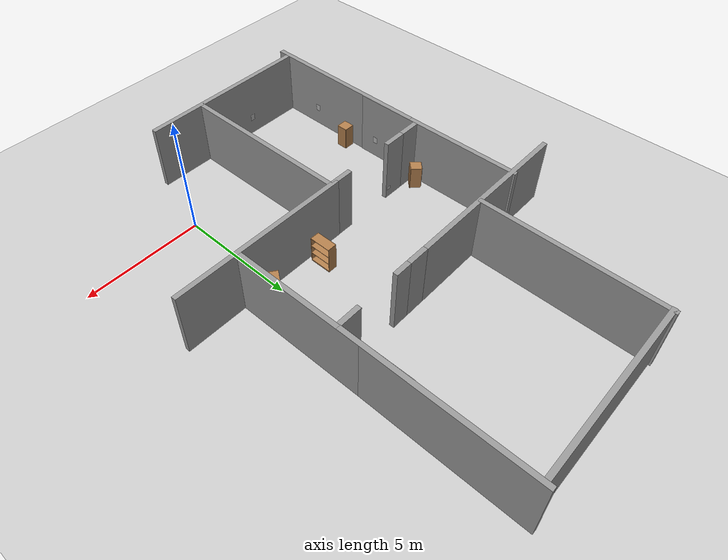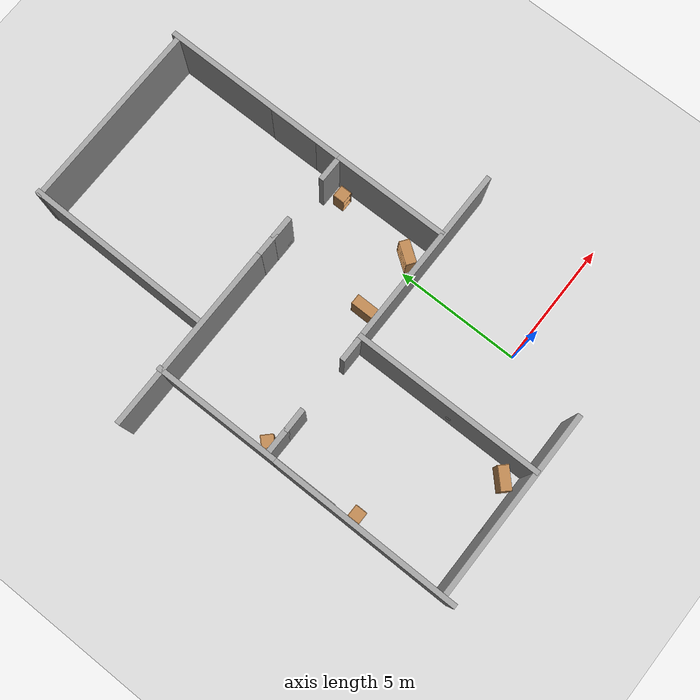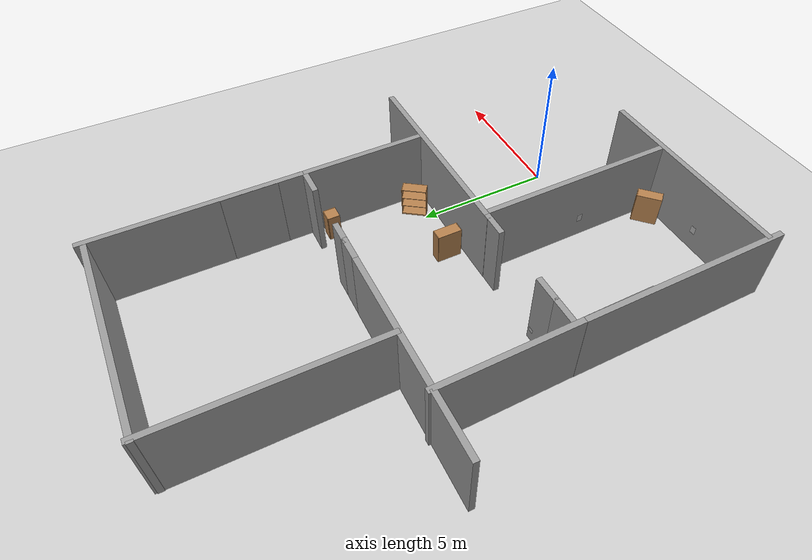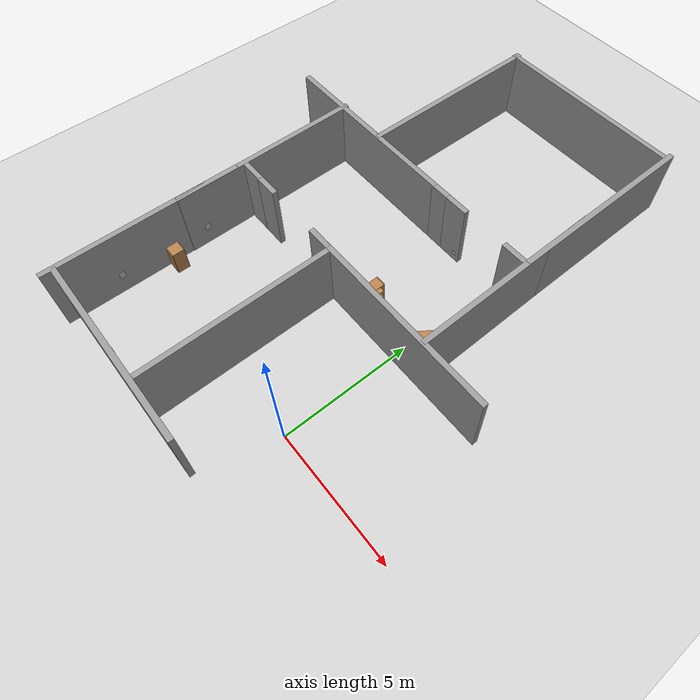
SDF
<sdf version="1.4">
 <world name="default">
  <model name="plum">
   <static>1</static>
   <link name="link">
    <pose>0 0 1.4 0 -0 0</pose>
    <collision name="collision"><geometry><box><size>7.5 0.2 2.8</size></box></geometry></collision>
    <visual name="visual">
     <cast_shadows>0</cast_shadows>
     <geometry><box><size>0.21 0.001 0.297</size></box></geometry>
     <material>
      <script>
       <uri>model://plum/materials/scripts</uri>
       <uri>model://plum/materials/textures</uri>
       <name>plum/Image</name>
      </script>
     </material>
    </visual>
    <velocity_decay><linear>0</linear><angular>0</angular></velocity_decay>
   </link>
   <pose>-8.12 2.43019 -0.548785 0 -0 1.56682</pose>
  </model>
  <model name="peacock">
   <static>1</static>
   <link name="link">
    <pose>0 0 1.4 0 -0 0</pose>
    <collision name="collision"><geometry><box><size>7.5 0.2 2.8</size></box></geometry></collision>
    <visual name="visual">
     <cast_shadows>0</cast_shadows>
     <geometry><box><size>0.21 0.001 0.297</size></box></geometry>
     <material>
      <script>
       <uri>model://peacock/materials/scripts</uri>
       <uri>model://peacock/materials/textures</uri>
       <name>peacock/Image</name>
      </script>
     </material>
    </visual>
    <velocity_decay><linear>0</linear><angular>0</angular></velocity_decay>
   </link>
   <pose>-3.31365 0.525367 -0.548785 0.001699 0.024262 -1.53124</pose>
  </model>
  <model name="scarlet">
   <static>1</static>
   <link name="link">
    <pose>0 0 1.4 0 -0 0</pose>
    <collision name="collision"><geometry><box><size>7.5 0.2 2.8</size></box></geometry></collision>
    <visual name="visual">
     <cast_shadows>0</cast_shadows>
     <geometry><box><size>0.21 0.001 0.297</size></box></geometry>
     <material>
      <script>
       <uri>model://scarlet/materials/scripts</uri>
       <uri>model://scarlet/materials/textures</uri>
       <name>scarlet/Image</name>
      </script>
     </material>
    </visual>
    <velocity_decay><linear>0</linear><angular>0</angular></velocity_decay>
   </link>
   <pose>-8.16312 -1.04809 -0.548785 0 -0 1.56682</pose>
  </model>
  <model name="mustard">
   <static>1</static>
   <link name="link">
    <pose>0 0 1.4 0 -0 0</pose>
    <collision name="collision"><geometry><box><size>7.5 0.2 2.8</size></box></geometry></collision>
    <visual name="visual">
     <cast_shadows>0</cast_shadows>
     <geometry><box><size>0.21 0.001 0.297</size></box></geometry>
     <material>
      <script>
       <uri>model://mustard/materials/scripts</uri>
       <uri>model://mustard/materials/textures</uri>
       <name>mustard/Image</name>
      </script>
     </material>
    </visual>
    <velocity_decay><linear>0</linear><angular>0</angular></velocity_decay>
   </link>
   <pose>-5.65847 -2.71459 -0.548785 0 0 -3.11888</pose>
  </model>
  <light name="sun" type="directional">
   <pose>0 0 1 0 -0 0</pose>
   <diffuse>0.8 0.8 0.8 1</diffuse>
   <specular>1 1 1 1</specular>
   <attenuation>
    <range>1000</range>
    <constant>0.9</constant>
    <linear>0.01</linear>
    <quadratic>0.001</quadratic>
   </attenuation>
   <direction>-0 0 -1</direction>
  </light>
  <light name="light_a" type="point">
   <cast_shadows>0</cast_shadows>
   <pose>0 0 1 0 -0 0</pose>
   <diffuse>0.2 0.2 0.2 1</diffuse>
   <specular>1 1 1 1</specular>
   <attenuation>
    <range>1000</range>
    <constant>0.9</constant>
    <linear>0.01</linear>
    <quadratic>0.001</quadratic>
   </attenuation>
   <direction>0 0 -1</direction>
  </light>
  <light name="light_b" type="point">
   <cast_shadows>0</cast_shadows>
   <pose>-7 6 1 0 -0 0</pose>
   <diffuse>0.2 0.2 0.2 0.2</diffuse>
   <specular>0.2 0.2 0.2 0.2</specular>
   <attenuation>
    <range>1000</range>
    <constant>0.9</constant>
    <linear>0.01</linear>
    <quadratic>0.001</quadratic>
   </attenuation>
   <direction>0 0 -1</direction>
  </light>
  <light name="light_c" type="point">
   <cast_shadows>0</cast_shadows>
   <pose>-2.3 6 1 0 -0 0</pose>
   <diffuse>0.2 0.2 0.2 1</diffuse>
   <specular>1 1 1 1</specular>
   <attenuation>
    <range>1000</range>
    <constant>0.9</constant>
    <linear>0.01</linear>
    <quadratic>0.001</quadratic>
   </attenuation>
   <direction>0 0 -1</direction>
  </light>
  <light name="light_d" type="point">
   <cast_shadows>0</cast_shadows>
   <pose>-7 2 1 0 -0 0</pose>
   <diffuse>0.2 0.2 0.2 1</diffuse>
   <specular>1 1 1 1</specular>
   <attenuation>
    <range>1000</range>
    <constant>0.9</constant>
    <linear>0.01</linear>
    <quadratic>0.001</quadratic>
   </attenuation>
   <direction>0 0 -1</direction>
  </light>
  <model name="ground_plane">
   <static>1</static>
   <link name="link">
    <collision name="collision">
     <geometry><plane><normal>0 0 1</normal><size>100 100</size></plane></geometry>
     <surface><friction><ode><mu>100</mu><mu2>50</mu2></ode></friction></surface>
    </collision>
    <visual name="visual">
     <cast_shadows>0</cast_shadows>
     <geometry><plane><normal>0 0 1</normal><size>100 100</size></plane></geometry>
     <material>
      <script><uri>file://media/materials/scripts/gazebo.material</uri><name>Gazebo/Grey</name></script>
     </material>
    </visual>
    <velocity_decay><linear>0</linear><angular>0</angular></velocity_decay>
   </link>
  </model>
  <physics type="ode">
   <max_step_size>0.001</max_step_size>
   <real_time_factor>1</real_time_factor>
   <real_time_update_rate>1000</real_time_update_rate>
   <gravity>0 0 -9.8</gravity>
  </physics>
  <scene><ambient>0.4 0.4 0.4 1</ambient><background>0.7 0.7 0.7 1</background><shadows>1</shadows></scene>
  <spherical_coordinates>
   <surface_model>EARTH_WGS84</surface_model>
   <latitude_deg>0</latitude_deg>
   <longitude_deg>0</longitude_deg>
   <elevation>0</elevation>
   <heading_deg>0</heading_deg>
  </spherical_coordinates>
  <model name="grey_wall_0">
   <static>1</static>
   <link name="link">
    <pose>0 0 1.4 0 -0 0</pose>
    <collision name="collision"><geometry><box><size>7.5 0.2 2.8</size></box></geometry></collision>
    <visual name="visual">
     <cast_shadows>0</cast_shadows>
     <geometry><box><size>7.5 0.2 2.8</size></box></geometry>
     <material>
      <script>
       <uri>model://grey_wall/materials/scripts</uri>
       <uri>model://grey_wall/materials/textures</uri>
       <name>vrc/grey_wall</name>
      </script>
     </material>
    </visual>
    <velocity_decay><linear>0</linear><angular>0</angular></velocity_decay>
   </link>
   <pose>-4.52291 -2.86251 0 0 -0 0</pose>
  </model>
  <model name="grey_wall_1">
   <static>1</static>
   <link name="link">
    <pose>0 0 1.4 0 -0 0</pose>
    <collision name="collision"><geometry><box><size>7.5 0.2 2.8</size></box></geometry></collision>
    <visual name="visual">
     <cast_shadows>0</cast_shadows>
     <geometry><box><size>7.5 0.2 2.8</size></box></geometry>
     <material>
      <script>
       <uri>model://grey_wall/materials/scripts</uri>
       <uri>model://grey_wall/materials/textures</uri>
       <name>vrc/grey_wall</name>
      </script>
     </material>
    </visual>
    <velocity_decay><linear>0</linear><angular>0</angular></velocity_decay>
   </link>
   <pose>-8.26511 0.391548 0 0 0 -1.57181</pose>
  </model>
  <model name="grey_wall_2">
   <static>1</static>
   <link name="link">
    <pose>0 0 1.4 0 -0 0</pose>
    <collision name="collision"><geometry><box><size>7.5 0.2 2.8</size></box></geometry></collision>
    <visual name="visual">
     <cast_shadows>0</cast_shadows>
     <geometry><box><size>7.5 0.2 2.8</size></box></geometry>
     <material>
      <script>
       <uri>model://grey_wall/materials/scripts</uri>
       <uri>model://grey_wall/materials/textures</uri>
       <name>vrc/grey_wall</name>
      </script>
     </material>
    </visual>
    <velocity_decay><linear>0</linear><angular>0</angular></velocity_decay>
   </link>
   <pose>-3.20895 0.824081 0 0 -0 1.57557</pose>
  </model>
  <model name="grey_wall_3">
   <static>1</static>
   <link name="link">
    <pose>0 0 1.4 0 -0 0</pose>
    <collision name="collision"><geometry><box><size>7.5 0.2 2.8</size></box></geometry></collision>
    <visual name="visual">
     <cast_shadows>0</cast_shadows>
     <geometry><box><size>7.5 0.2 2.8</size></box></geometry>
     <material>
      <script>
       <uri>model://grey_wall/materials/scripts</uri>
       <uri>model://grey_wall/materials/textures</uri>
       <name>vrc/grey_wall</name>
      </script>
     </material>
    </visual>
    <velocity_decay><linear>0</linear><angular>0</angular></velocity_decay>
   </link>
   <pose>1.28557 12.7935 0.00212 0 0 -1.57102</pose>
  </model>
  <model name="grey_wall_4">
   <static>1</static>
   <link name="link">
    <pose>0 0 1.4 0 -0 0</pose>
    <collision name="collision"><geometry><box><size>7.5 0.2 2.8</size></box></geometry></collision>
    <visual name="visual">
     <cast_shadows>0</cast_shadows>
     <geometry><box><size>7.5 0.2 2.8</size></box></geometry>
     <material>
      <script>
       <uri>model://grey_wall/materials/scripts</uri>
       <uri>model://grey_wall/materials/textures</uri>
       <name>vrc/grey_wall</name>
      </script>
     </material>
    </visual>
    <velocity_decay><linear>0</linear><angular>0</angular></velocity_decay>
   </link>
   <pose>0.216538 4.48112 0 0 -0 0</pose>
  </model>
  <model name="grey_wall_5">
   <static>1</static>
   <link name="link">
    <pose>0 0 1.4 0 -0 0</pose>
    <collision name="collision"><geometry><box><size>7.5 0.2 2.8</size></box></geometry></collision>
    <visual name="visual">
     <cast_shadows>0</cast_shadows>
     <geometry><box><size>7.5 0.2 2.8</size></box></geometry>
     <material>
      <script>
       <uri>model://grey_wall/materials/scripts</uri>
       <uri>model://grey_wall/materials/textures</uri>
       <name>vrc/grey_wall</name>
      </script>
     </material>
    </visual>
    <velocity_decay><linear>0</linear><angular>0</angular></velocity_decay>
   </link>
   <pose>-2.53554 16.2683 0 0 -0 0</pose>
  </model>
  <model name="cabinet">
   <static>1</static>
   <link name="cabinet_bottom_plate">
    <inertial>
     <pose>0 0 -1 0 -0 0</pose>
     <inertia><ixx>2.05</ixx><ixy>0</ixy><ixz>0</ixz><iyy>2.05</iyy><iyz>0</iyz><izz>2.05</izz></inertia>
     <mass>25</mass>
    </inertial>
    <collision name="cabinet_bottom_plate_geom">
     <pose>0 0 0.01 0 -0 0</pose>
     <geometry><box><size>0.45 0.45 0.02</size></box></geometry>
    </collision>
    <visual name="cabinet_bottom_plate_geom_visual">
     <pose>0 0 0.01 0 -0 0</pose>
     <geometry><box><size>0.45 0.45 0.02</size></box></geometry>
     <material>
      <script><uri>file://media/materials/scripts/gazebo.material</uri><name>Gazebo/Wood</name></script>
     </material>
    </visual>
    <collision name="cabinet_bottom_plate_geom_cabinet_back_plate">
     <pose>0.235 0 0.51 0 -0 0</pose>
     <geometry><box><size>0.02 0.45 1.02</size></box></geometry>
    </collision>
    <visual name="cabinet_bottom_plate_geom_cabinet_back_plate_visual">
     <pose>0.235 0 0.51 0 -0 0</pose>
     <geometry><box><size>0.02 0.45 1.02</size></box></geometry>
     <material>
      <script><uri>file://media/materials/scripts/gazebo.material</uri><name>Gazebo/Wood</name></script>
     </material>
    </visual>
    <collision name="cabinet_bottom_plate_geom_cabinet_left_plate">
     <pose>0 0.235 0.51 0 -0 0</pose>
     <geometry><box><size>0.45 0.02 1.02</size></box></geometry>
    </collision>
    <visual name="cabinet_bottom_plate_geom_cabinet_left_plate_visual">
     <pose>0 0.235 0.51 0 -0 0</pose>
     <geometry><box><size>0.45 0.02 1.02</size></box></geometry>
     <material>
      <script><uri>file://media/materials/scripts/gazebo.material</uri><name>Gazebo/Wood</name></script>
     </material>
    </visual>
    <collision name="cabinet_bottom_plate_geom_cabinet_middle_plate">
     <pose>0 0 0.51 0 -0 0</pose>
     <geometry><box><size>0.45 0.45 0.02</size></box></geometry>
    </collision>
    <visual name="cabinet_bottom_plate_geom_cabinet_middle_plate_visual">
     <pose>0 0 0.51 0 -0 0</pose>
     <geometry><box><size>0.45 0.45 0.02</size></box></geometry>
     <material>
      <script><uri>file://media/materials/scripts/gazebo.material</uri><name>Gazebo/Wood</name></script>
     </material>
    </visual>
    <collision name="cabinet_bottom_plate_geom_cabinet_right_plate">
     <pose>0 -0.235 0.51 0 -0 0</pose>
     <geometry><box><size>0.45 0.02 1.02</size></box></geometry>
    </collision>
    <visual name="cabinet_bottom_plate_geom_cabinet_right_plate_visual">
     <pose>0 -0.235 0.51 0 -0 0</pose>
     <geometry><box><size>0.45 0.02 1.02</size></box></geometry>
     <material>
      <script><uri>file://media/materials/scripts/gazebo.material</uri><name>Gazebo/Wood</name></script>
     </material>
    </visual>
    <collision name="cabinet_bottom_plate_geom_cabinet_top_plate">
     <pose>0 0 1.01 0 -0 0</pose>
     <geometry><box><size>0.45 0.45 0.02</size></box></geometry>
    </collision>
    <visual name="cabinet_bottom_plate_geom_cabinet_top_plate_visual">
     <pose>0 0 1.01 0 -0 0</pose>
     <geometry><box><size>0.45 0.45 0.02</size></box></geometry>
     <material>
      <script><uri>file://media/materials/scripts/gazebo.material</uri><name>Gazebo/Wood</name></script>
     </material>
    </visual>
    <velocity_decay><linear>0</linear><angular>0</angular></velocity_decay>
   </link>
   <pose>0.764642 8.40607 0.028898 0 -0 1.56926</pose>
  </model>
  <model name="bookshelf">
   <static>1</static>
   <link name="link">
    <inertial><mass>1</mass></inertial>
    <collision name="back">
     <pose>0 0.005 0.6 0 -0 0</pose>
     <geometry><box><size>0.9 0.01 1.2</size></box></geometry>
    </collision>
    <visual name="visual1">
     <pose>0 0.005 0.6 0 -0 0</pose>
     <geometry><box><size>0.9 0.01 1.2</size></box></geometry>
     <material>
      <script><uri>file://media/materials/scripts/gazebo.material</uri><name>Gazebo/Wood</name></script>
     </material>
    </visual>
    <collision name="left_side">
     <pose>0.45 -0.195 0.6 0 -0 0</pose>
     <geometry><box><size>0.02 0.4 1.2</size></box></geometry>
    </collision>
    <visual name="visual2">
     <pose>0.45 -0.195 0.6 0 -0 0</pose>
     <geometry><box><size>0.02 0.4 1.2</size></box></geometry>
     <material>
      <script><uri>file://media/materials/scripts/gazebo.material</uri><name>Gazebo/Wood</name></script>
     </material>
    </visual>
    <collision name="right_side">
     <pose>-0.45 -0.195 0.6 0 -0 0</pose>
     <geometry><box><size>0.02 0.4 1.2</size></box></geometry>
    </collision>
    <visual name="visual3">
     <pose>-0.45 -0.195 0.6 0 -0 0</pose>
     <geometry><box><size>0.02 0.4 1.2</size></box></geometry>
     <material>
      <script><uri>file://media/materials/scripts/gazebo.material</uri><name>Gazebo/Wood</name></script>
     </material>
    </visual>
    <collision name="bottom">
     <pose>0 -0.195 0.03 0 -0 0</pose>
     <geometry><box><size>0.88 0.4 0.06</size></box></geometry>
    </collision>
    <visual name="visual4">
     <pose>0 -0.195 0.03 0 -0 0</pose>
     <geometry><box><size>0.88 0.4 0.06</size></box></geometry>
     <material>
      <script><uri>file://media/materials/scripts/gazebo.material</uri><name>Gazebo/Wood</name></script>
     </material>
    </visual>
    <collision name="top">
     <pose>0 -0.195 1.19 0 -0 0</pose>
     <geometry><box><size>0.88 0.4 0.02</size></box></geometry>
    </collision>
    <visual name="visual5">
     <pose>0 -0.195 1.19 0 -0 0</pose>
     <geometry><box><size>0.88 0.4 0.02</size></box></geometry>
     <material>
      <script><uri>file://media/materials/scripts/gazebo.material</uri><name>Gazebo/Wood</name></script>
     </material>
    </visual>
    <collision name="low_shelf">
     <pose>0 -0.195 0.43 0 -0 0</pose>
     <geometry><box><size>0.88 0.4 0.02</size></box></geometry>
    </collision>
    <visual name="visual6">
     <pose>0 -0.195 0.43 0 -0 0</pose>
     <geometry><box><size>0.88 0.4 0.02</size></box></geometry>
     <material>
      <script><uri>file://media/materials/scripts/gazebo.material</uri><name>Gazebo/Wood</name></script>
     </material>
    </visual>
    <collision name="high_shelf">
     <pose>0 -0.195 0.8 0 -0 0</pose>
     <geometry><box><size>0.88 0.4 0.02</size></box></geometry>
    </collision>
    <visual name="visual7">
     <pose>0 -0.195 0.8 0 -0 0</pose>
     <geometry><box><size>0.88 0.4 0.02</size></box></geometry>
     <material>
      <script><uri>file://media/materials/scripts/gazebo.material</uri><name>Gazebo/Wood</name></script>
     </material>
    </visual>
    <velocity_decay><linear>0</linear><angular>0</angular></velocity_decay>
   </link>
   <pose>0.643961 5.11216 0 0 0 -2.18701</pose>
  </model>
  <model name="grey_wall">
   <static>1</static>
   <link name="link">
    <pose>0 0 1.4 0 -0 0</pose>
    <collision name="collision"><geometry><box><size>7.5 0.2 2.8</size></box></geometry></collision>
    <visual name="visual">
     <cast_shadows>0</cast_shadows>
     <geometry><box><size>7.5 0.2 2.8</size></box></geometry>
     <material>
      <script>
       <uri>model://grey_wall/materials/scripts</uri>
       <uri>model://grey_wall/materials/textures</uri>
       <name>vrc/grey_wall</name>
      </script>
     </material>
    </visual>
    <velocity_decay><linear>0</linear><angular>0</angular></velocity_decay>
   </link>
   <pose>1.29686 8.21158 0 0 0 -1.56399</pose>
  </model>
  <model name="grey_wall_8">
   <static>1</static>
   <link name="link">
    <pose>0 0 1.4 0 -0 0</pose>
    <collision name="collision"><geometry><box><size>7.5 0.2 2.8</size></box></geometry></collision>
    <visual name="visual">
     <cast_shadows>0</cast_shadows>
     <geometry><box><size>7.5 0.2 2.8</size></box></geometry>
     <material>
      <script>
       <uri>model://grey_wall/materials/scripts</uri>
       <uri>model://grey_wall/materials/textures</uri>
       <name>vrc/grey_wall</name>
      </script>
     </material>
    </visual>
    <velocity_decay><linear>0</linear><angular>0</angular></velocity_decay>
   </link>
   <pose>-8.25909 5.41188 0 0 -0 1.5757</pose>
  </model>
  <model name="grey_wall_9">
   <static>1</static>
   <link name="link">
    <pose>0 0 1.4 0 -0 0</pose>
    <collision name="collision"><geometry><box><size>7.5 0.2 2.8</size></box></geometry></collision>
    <visual name="visual">
     <cast_shadows>0</cast_shadows>
     <geometry><box><size>7.5 0.2 2.8</size></box></geometry>
     <material>
      <script>
       <uri>model://grey_wall/materials/scripts</uri>
       <uri>model://grey_wall/materials/textures</uri>
       <name>vrc/grey_wall</name>
      </script>
     </material>
    </visual>
    <velocity_decay><linear>0</linear><angular>0</angular></velocity_decay>
   </link>
   <pose>-6.82207 8.98503 0 0 -0 0</pose>
  </model>
  <model name="cabinet_0">
   <static>1</static>
   <link name="cabinet_bottom_plate">
    <inertial>
     <pose>0 0 -1 0 -0 0</pose>
     <inertia><ixx>2.05</ixx><ixy>0</ixy><ixz>0</ixz><iyy>2.05</iyy><iyz>0</iyz><izz>2.05</izz></inertia>
     <mass>25</mass>
    </inertial>
    <collision name="cabinet_bottom_plate_geom">
     <pose>0 0 0.01 0 -0 0</pose>
     <geometry><box><size>0.45 0.45 0.02</size></box></geometry>
    </collision>
    <visual name="cabinet_bottom_plate_geom_visual">
     <pose>0 0 0.01 0 -0 0</pose>
     <geometry><box><size>0.45 0.45 0.02</size></box></geometry>
     <material>
      <script><uri>file://media/materials/scripts/gazebo.material</uri><name>Gazebo/Wood</name></script>
     </material>
    </visual>
    <collision name="cabinet_bottom_plate_geom_cabinet_back_plate">
     <pose>0.235 0 0.51 0 -0 0</pose>
     <geometry><box><size>0.02 0.45 1.02</size></box></geometry>
    </collision>
    <visual name="cabinet_bottom_plate_geom_cabinet_back_plate_visual">
     <pose>0.235 0 0.51 0 -0 0</pose>
     <geometry><box><size>0.02 0.45 1.02</size></box></geometry>
     <material>
      <script><uri>file://media/materials/scripts/gazebo.material</uri><name>Gazebo/Wood</name></script>
     </material>
    </visual>
    <collision name="cabinet_bottom_plate_geom_cabinet_left_plate">
     <pose>0 0.235 0.51 0 -0 0</pose>
     <geometry><box><size>0.45 0.02 1.02</size></box></geometry>
    </collision>
    <visual name="cabinet_bottom_plate_geom_cabinet_left_plate_visual">
     <pose>0 0.235 0.51 0 -0 0</pose>
     <geometry><box><size>0.45 0.02 1.02</size></box></geometry>
     <material>
      <script><uri>file://media/materials/scripts/gazebo.material</uri><name>Gazebo/Wood</name></script>
     </material>
    </visual>
    <collision name="cabinet_bottom_plate_geom_cabinet_middle_plate">
     <pose>0 0 0.51 0 -0 0</pose>
     <geometry><box><size>0.45 0.45 0.02</size></box></geometry>
    </collision>
    <visual name="cabinet_bottom_plate_geom_cabinet_middle_plate_visual">
     <pose>0 0 0.51 0 -0 0</pose>
     <geometry><box><size>0.45 0.45 0.02</size></box></geometry>
     <material>
      <script><uri>file://media/materials/scripts/gazebo.material</uri><name>Gazebo/Wood</name></script>
     </material>
    </visual>
    <collision name="cabinet_bottom_plate_geom_cabinet_right_plate">
     <pose>0 -0.235 0.51 0 -0 0</pose>
     <geometry><box><size>0.45 0.02 1.02</size></box></geometry>
    </collision>
    <visual name="cabinet_bottom_plate_geom_cabinet_right_plate_visual">
     <pose>0 -0.235 0.51 0 -0 0</pose>
     <geometry><box><size>0.45 0.02 1.02</size></box></geometry>
     <material>
      <script><uri>file://media/materials/scripts/gazebo.material</uri><name>Gazebo/Wood</name></script>
     </material>
    </visual>
    <collision name="cabinet_bottom_plate_geom_cabinet_top_plate">
     <pose>0 0 1.01 0 -0 0</pose>
     <geometry><box><size>0.45 0.45 0.02</size></box></geometry>
    </collision>
    <visual name="cabinet_bottom_plate_geom_cabinet_top_plate_visual">
     <pose>0 0 1.01 0 -0 0</pose>
     <geometry><box><size>0.45 0.45 0.02</size></box></geometry>
     <material>
      <script><uri>file://media/materials/scripts/gazebo.material</uri><name>Gazebo/Wood</name></script>
     </material>
    </visual>
    <velocity_decay><linear>0</linear><angular>0</angular></velocity_decay>
   </link>
   <pose>-7.86683 0.925523 0 0 -0 0</pose>
  </model>
  <model name="bookshelf_0">
   <static>1</static>
   <link name="link">
    <inertial><mass>1</mass></inertial>
    <collision name="back">
     <pose>0 0.005 0.6 0 -0 0</pose>
     <geometry><box><size>0.9 0.01 1.2</size></box></geometry>
    </collision>
    <visual name="visual1">
     <pose>0 0.005 0.6 0 -0 0</pose>
     <geometry><box><size>0.9 0.01 1.2</size></box></geometry>
     <material>
      <script><uri>file://media/materials/scripts/gazebo.material</uri><name>Gazebo/Wood</name></script>
     </material>
    </visual>
    <collision name="left_side">
     <pose>0.45 -0.195 0.6 0 -0 0</pose>
     <geometry><box><size>0.02 0.4 1.2</size></box></geometry>
    </collision>
    <visual name="visual2">
     <pose>0.45 -0.195 0.6 0 -0 0</pose>
     <geometry><box><size>0.02 0.4 1.2</size></box></geometry>
     <material>
      <script><uri>file://media/materials/scripts/gazebo.material</uri><name>Gazebo/Wood</name></script>
     </material>
    </visual>
    <collision name="right_side">
     <pose>-0.45 -0.195 0.6 0 -0 0</pose>
     <geometry><box><size>0.02 0.4 1.2</size></box></geometry>
    </collision>
    <visual name="visual3">
     <pose>-0.45 -0.195 0.6 0 -0 0</pose>
     <geometry><box><size>0.02 0.4 1.2</size></box></geometry>
     <material>
      <script><uri>file://media/materials/scripts/gazebo.material</uri><name>Gazebo/Wood</name></script>
     </material>
    </visual>
    <collision name="bottom">
     <pose>0 -0.195 0.03 0 -0 0</pose>
     <geometry><box><size>0.88 0.4 0.06</size></box></geometry>
    </collision>
    <visual name="visual4">
     <pose>0 -0.195 0.03 0 -0 0</pose>
     <geometry><box><size>0.88 0.4 0.06</size></box></geometry>
     <material>
      <script><uri>file://media/materials/scripts/gazebo.material</uri><name>Gazebo/Wood</name></script>
     </material>
    </visual>
    <collision name="top">
     <pose>0 -0.195 1.19 0 -0 0</pose>
     <geometry><box><size>0.88 0.4 0.02</size></box></geometry>
    </collision>
    <visual name="visual5">
     <pose>0 -0.195 1.19 0 -0 0</pose>
     <geometry><box><size>0.88 0.4 0.02</size></box></geometry>
     <material>
      <script><uri>file://media/materials/scripts/gazebo.material</uri><name>Gazebo/Wood</name></script>
     </material>
    </visual>
    <collision name="low_shelf">
     <pose>0 -0.195 0.43 0 -0 0</pose>
     <geometry><box><size>0.88 0.4 0.02</size></box></geometry>
    </collision>
    <visual name="visual6">
     <pose>0 -0.195 0.43 0 -0 0</pose>
     <geometry><box><size>0.88 0.4 0.02</size></box></geometry>
     <material>
      <script><uri>file://media/materials/scripts/gazebo.material</uri><name>Gazebo/Wood</name></script>
     </material>
    </visual>
    <collision name="high_shelf">
     <pose>0 -0.195 0.8 0 -0 0</pose>
     <geometry><box><size>0.88 0.4 0.02</size></box></geometry>
    </collision>
    <visual name="visual7">
     <pose>0 -0.195 0.8 0 -0 0</pose>
     <geometry><box><size>0.88 0.4 0.02</size></box></geometry>
     <material>
      <script><uri>file://media/materials/scripts/gazebo.material</uri><name>Gazebo/Wood</name></script>
     </material>
    </visual>
    <velocity_decay><linear>0</linear><angular>0</angular></velocity_decay>
   </link>
   <pose>-3.90366 -2.11997 0 0 -0 0.763607</pose>
  </model>
  <model name="grey_wall_small">
   <static>1</static>
   <link name="link">
    <pose>0 0 1.4 0 -0 0</pose>
    <collision name="collision"><geometry><box><size>0.9375 0.2 2.8</size></box></geometry></collision>
    <visual name="visual">
     <cast_shadows>0</cast_shadows>
     <geometry><box><size>0.9375 0.2 2.8</size></box></geometry>
     <material>
      <script>
       <uri>model://grey_wall_small/materials/scripts</uri>
       <uri>model://grey_wall_small/materials/textures</uri>
       <name>vrc/grey_wall_small</name>
      </script>
     </material>
    </visual>
    <velocity_decay><linear>0</linear><angular>0</angular></velocity_decay>
   </link>
   <pose>-2.66651 8.98103 0 0 -0 0</pose>
  </model>
  <model name="grey_wall_small_0">
   <static>1</static>
   <link name="link">
    <pose>0 0 1.4 0 -0 0</pose>
    <collision name="collision"><geometry><box><size>0.9375 0.2 2.8</size></box></geometry></collision>
    <visual name="visual">
     <cast_shadows>0</cast_shadows>
     <geometry><box><size>0.9375 0.2 2.8</size></box></geometry>
     <material>
      <script>
       <uri>model://grey_wall_small/materials/scripts</uri>
       <uri>model://grey_wall_small/materials/textures</uri>
       <name>vrc/grey_wall_small</name>
      </script>
     </material>
    </visual>
    <velocity_decay><linear>0</linear><angular>0</angular></velocity_decay>
   </link>
   <pose>-3.79075 4.47218 0 0 -0 0</pose>
  </model>
  <model name="grey_wall_small_1">
   <static>1</static>
   <link name="link">
    <pose>0 0 1.4 0 -0 0</pose>
    <collision name="collision"><geometry><box><size>0.9375 0.2 2.8</size></box></geometry></collision>
    <visual name="visual">
     <cast_shadows>0</cast_shadows>
     <geometry><box><size>0.9375 0.2 2.8</size></box></geometry>
     <material>
      <script>
       <uri>model://grey_wall_small/materials/scripts</uri>
       <uri>model://grey_wall_small/materials/textures</uri>
       <name>vrc/grey_wall_small</name>
      </script>
     </material>
    </visual>
    <velocity_decay><linear>0</linear><angular>0</angular></velocity_decay>
   </link>
   <pose>-1.95419 8.97914 0 0 -0 0</pose>
  </model>
  <model name="grey_wall_small_2">
   <static>1</static>
   <link name="link">
    <pose>0 0 1.4 0 -0 0</pose>
    <collision name="collision"><geometry><box><size>0.9375 0.2 2.8</size></box></geometry></collision>
    <visual name="visual">
     <cast_shadows>0</cast_shadows>
     <geometry><box><size>0.9375 0.2 2.8</size></box></geometry>
     <material>
      <script>
       <uri>model://grey_wall_small/materials/scripts</uri>
       <uri>model://grey_wall_small/materials/textures</uri>
       <name>vrc/grey_wall_small</name>
      </script>
     </material>
    </visual>
    <velocity_decay><linear>0</linear><angular>0</angular></velocity_decay>
   </link>
   <pose>0.730258 8.99036 0 0 -0 0</pose>
  </model>
  <model name="grey_wall_small_3">
   <static>1</static>
   <link name="link">
    <pose>0 0 1.4 0 -0 0</pose>
    <collision name="collision"><geometry><box><size>0.9375 0.2 2.8</size></box></geometry></collision>
    <visual name="visual">
     <cast_shadows>0</cast_shadows>
     <geometry><box><size>0.9375 0.2 2.8</size></box></geometry>
     <material>
      <script>
       <uri>model://grey_wall_small/materials/scripts</uri>
       <uri>model://grey_wall_small/materials/textures</uri>
       <name>vrc/grey_wall_small</name>
      </script>
     </material>
    </visual>
    <velocity_decay><linear>0</linear><angular>0</angular></velocity_decay>
   </link>
   <pose>-7.6898 4.46929 0 0 -0 0</pose>
  </model>
  <model name="grey_wall_small_4">
   <static>1</static>
   <link name="link">
    <pose>0 0 1.4 0 -0 0</pose>
    <collision name="collision"><geometry><box><size>0.9375 0.2 2.8</size></box></geometry></collision>
    <visual name="visual">
     <cast_shadows>0</cast_shadows>
     <geometry><box><size>0.9375 0.2 2.8</size></box></geometry>
     <material>
      <script>
       <uri>model://grey_wall_small/materials/scripts</uri>
       <uri>model://grey_wall_small/materials/textures</uri>
       <name>vrc/grey_wall_small</name>
      </script>
     </material>
    </visual>
    <velocity_decay><linear>0</linear><angular>0</angular></velocity_decay>
   </link>
   <pose>-6.82457 4.46929 0 0 -0 0</pose>
  </model>
  <model name="red_image">
   <static>1</static>
   <link name="link">
    <collision name="collision"><geometry><box><size>0.21 0.0001 0.16</size></box></geometry></collision>
    <visual name="visual">
     <cast_shadows>0</cast_shadows>
     <geometry><box><size>0.21 0.0001 0.16</size></box></geometry>
     <material>
      <script>
       <uri>model://red_image/materials/scripts</uri>
       <uri>model://red_image/materials/textures</uri>
       <name>red_image/Image</name>
      </script>
     </material>
    </visual>
    <velocity_decay><linear>0</linear><angular>0</angular></velocity_decay>
   </link>
   <pose>-1.71032 8.87905 0.357122 0 -0 0</pose>
  </model>
  <model name="green_image">
   <static>1</static>
   <link name="link">
    <collision name="collision"><geometry><box><size>0.21 0.0001 0.16</size></box></geometry></collision>
    <visual name="visual">
     <cast_shadows>0</cast_shadows>
     <geometry><box><size>0.21 0.0001 0.16</size></box></geometry>
     <material>
      <script>
       <uri>model://green_image/materials/scripts</uri>
       <uri>model://green_image/materials/textures</uri>
       <name>green_image/Image</name>
      </script>
     </material>
    </visual>
    <velocity_decay><linear>0</linear><angular>0</angular></velocity_decay>
   </link>
   <pose>-6.52031 4.57756 0.471349 0 -0 0</pose>
  </model>
  <model name="bookshelf_1">
   <static>1</static>
   <link name="link">
    <inertial><mass>1</mass></inertial>
    <collision name="back">
     <pose>0 0.005 0.6 0 -0 0</pose>
     <geometry><box><size>0.9 0.01 1.2</size></box></geometry>
    </collision>
    <visual name="visual1">
     <pose>0 0.005 0.6 0 -0 0</pose>
     <geometry><box><size>0.9 0.01 1.2</size></box></geometry>
     <material>
      <script><uri>file://media/materials/scripts/gazebo.material</uri><name>Gazebo/Wood</name></script>
     </material>
    </visual>
    <collision name="left_side">
     <pose>0.45 -0.195 0.6 0 -0 0</pose>
     <geometry><box><size>0.02 0.4 1.2</size></box></geometry>
    </collision>
    <visual name="visual2">
     <pose>0.45 -0.195 0.6 0 -0 0</pose>
     <geometry><box><size>0.02 0.4 1.2</size></box></geometry>
     <material>
      <script><uri>file://media/materials/scripts/gazebo.material</uri><name>Gazebo/Wood</name></script>
     </material>
    </visual>
    <collision name="right_side">
     <pose>-0.45 -0.195 0.6 0 -0 0</pose>
     <geometry><box><size>0.02 0.4 1.2</size></box></geometry>
    </collision>
    <visual name="visual3">
     <pose>-0.45 -0.195 0.6 0 -0 0</pose>
     <geometry><box><size>0.02 0.4 1.2</size></box></geometry>
     <material>
      <script><uri>file://media/materials/scripts/gazebo.material</uri><name>Gazebo/Wood</name></script>
     </material>
    </visual>
    <collision name="bottom">
     <pose>0 -0.195 0.03 0 -0 0</pose>
     <geometry><box><size>0.88 0.4 0.06</size></box></geometry>
    </collision>
    <visual name="visual4">
     <pose>0 -0.195 0.03 0 -0 0</pose>
     <geometry><box><size>0.88 0.4 0.06</size></box></geometry>
     <material>
      <script><uri>file://media/materials/scripts/gazebo.material</uri><name>Gazebo/Wood</name></script>
     </material>
    </visual>
    <collision name="top">
     <pose>0 -0.195 1.19 0 -0 0</pose>
     <geometry><box><size>0.88 0.4 0.02</size></box></geometry>
    </collision>
    <visual name="visual5">
     <pose>0 -0.195 1.19 0 -0 0</pose>
     <geometry><box><size>0.88 0.4 0.02</size></box></geometry>
     <material>
      <script><uri>file://media/materials/scripts/gazebo.material</uri><name>Gazebo/Wood</name></script>
     </material>
    </visual>
    <collision name="low_shelf">
     <pose>0 -0.195 0.43 0 -0 0</pose>
     <geometry><box><size>0.88 0.4 0.02</size></box></geometry>
    </collision>
    <visual name="visual6">
     <pose>0 -0.195 0.43 0 -0 0</pose>
     <geometry><box><size>0.88 0.4 0.02</size></box></geometry>
     <material>
      <script><uri>file://media/materials/scripts/gazebo.material</uri><name>Gazebo/Wood</name></script>
     </material>
    </visual>
    <collision name="high_shelf">
     <pose>0 -0.195 0.8 0 -0 0</pose>
     <geometry><box><size>0.88 0.4 0.02</size></box></geometry>
    </collision>
    <visual name="visual7">
     <pose>0 -0.195 0.8 0 -0 0</pose>
     <geometry><box><size>0.88 0.4 0.02</size></box></geometry>
     <material>
      <script><uri>file://media/materials/scripts/gazebo.material</uri><name>Gazebo/Wood</name></script>
     </material>
    </visual>
    <velocity_decay><linear>0</linear><angular>0</angular></velocity_decay>
   </link>
   <pose>-2.21645 5.18694 0 0 -0 1.56891</pose>
  </model>
  <model name="cabinet_1">
   <static>1</static>
   <link name="cabinet_bottom_plate">
    <inertial>
     <pose>0 0 -1 0 -0 0</pose>
     <inertia><ixx>2.05</ixx><ixy>0</ixy><ixz>0</ixz><iyy>2.05</iyy><iyz>0</iyz><izz>2.05</izz></inertia>
     <mass>25</mass>
    </inertial>
    <collision name="cabinet_bottom_plate_geom">
     <pose>0 0 0.01 0 -0 0</pose>
     <geometry><box><size>0.45 0.45 0.02</size></box></geometry>
    </collision>
    <visual name="cabinet_bottom_plate_geom_visual">
     <pose>0 0 0.01 0 -0 0</pose>
     <geometry><box><size>0.45 0.45 0.02</size></box></geometry>
     <material>
      <script><uri>file://media/materials/scripts/gazebo.material</uri><name>Gazebo/Wood</name></script>
     </material>
    </visual>
    <collision name="cabinet_bottom_plate_geom_cabinet_back_plate">
     <pose>0.235 0 0.51 0 -0 0</pose>
     <geometry><box><size>0.02 0.45 1.02</size></box></geometry>
    </collision>
    <visual name="cabinet_bottom_plate_geom_cabinet_back_plate_visual">
     <pose>0.235 0 0.51 0 -0 0</pose>
     <geometry><box><size>0.02 0.45 1.02</size></box></geometry>
     <material>
      <script><uri>file://media/materials/scripts/gazebo.material</uri><name>Gazebo/Wood</name></script>
     </material>
    </visual>
    <collision name="cabinet_bottom_plate_geom_cabinet_left_plate">
     <pose>0 0.235 0.51 0 -0 0</pose>
     <geometry><box><size>0.45 0.02 1.02</size></box></geometry>
    </collision>
    <visual name="cabinet_bottom_plate_geom_cabinet_left_plate_visual">
     <pose>0 0.235 0.51 0 -0 0</pose>
     <geometry><box><size>0.45 0.02 1.02</size></box></geometry>
     <material>
      <script><uri>file://media/materials/scripts/gazebo.material</uri><name>Gazebo/Wood</name></script>
     </material>
    </visual>
    <collision name="cabinet_bottom_plate_geom_cabinet_middle_plate">
     <pose>0 0 0.51 0 -0 0</pose>
     <geometry><box><size>0.45 0.45 0.02</size></box></geometry>
    </collision>
    <visual name="cabinet_bottom_plate_geom_cabinet_middle_plate_visual">
     <pose>0 0 0.51 0 -0 0</pose>
     <geometry><box><size>0.45 0.45 0.02</size></box></geometry>
     <material>
      <script><uri>file://media/materials/scripts/gazebo.material</uri><name>Gazebo/Wood</name></script>
     </material>
    </visual>
    <collision name="cabinet_bottom_plate_geom_cabinet_right_plate">
     <pose>0 -0.235 0.51 0 -0 0</pose>
     <geometry><box><size>0.45 0.02 1.02</size></box></geometry>
    </collision>
    <visual name="cabinet_bottom_plate_geom_cabinet_right_plate_visual">
     <pose>0 -0.235 0.51 0 -0 0</pose>
     <geometry><box><size>0.45 0.02 1.02</size></box></geometry>
     <material>
      <script><uri>file://media/materials/scripts/gazebo.material</uri><name>Gazebo/Wood</name></script>
     </material>
    </visual>
    <collision name="cabinet_bottom_plate_geom_cabinet_top_plate">
     <pose>0 0 1.01 0 -0 0</pose>
     <geometry><box><size>0.45 0.45 0.02</size></box></geometry>
    </collision>
    <visual name="cabinet_bottom_plate_geom_cabinet_top_plate_visual">
     <pose>0 0 1.01 0 -0 0</pose>
     <geometry><box><size>0.45 0.45 0.02</size></box></geometry>
     <material>
      <script><uri>file://media/materials/scripts/gazebo.material</uri><name>Gazebo/Wood</name></script>
     </material>
    </visual>
    <velocity_decay><linear>0</linear><angular>0</angular></velocity_decay>
   </link>
   <pose>-7.8455 4.90192 0 0 -0 0.78721</pose>
  </model>
  <model name="grey_wall_6">
   <static>1</static>
   <link name="link">
    <pose>0 0 1.4 0 -0 0</pose>
    <collision name="collision"><geometry><box><size>7.5 0.2 2.8</size></box></geometry></collision>
    <visual name="visual">
     <cast_shadows>0</cast_shadows>
     <geometry><box><size>7.5 0.2 2.8</size></box></geometry>
     <material>
      <script>
       <uri>model://grey_wall/materials/scripts</uri>
       <uri>model://grey_wall/materials/textures</uri>
       <name>vrc/grey_wall</name>
      </script>
     </material>
    </visual>
    <velocity_decay><linear>0</linear><angular>0</angular></velocity_decay>
   </link>
   <pose>-6.18764 12.6933 0 0 0 -1.57809</pose>
  </model>
 </world>
</sdf>
